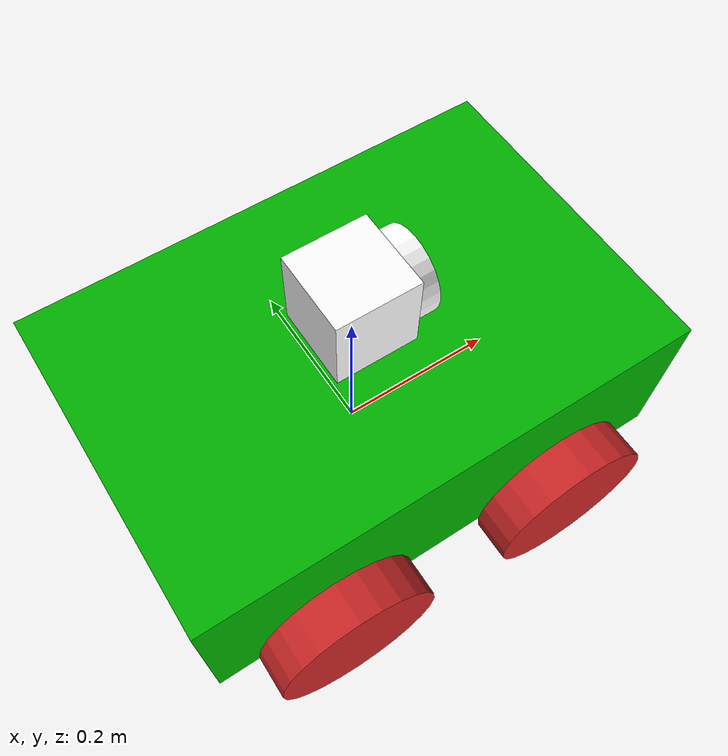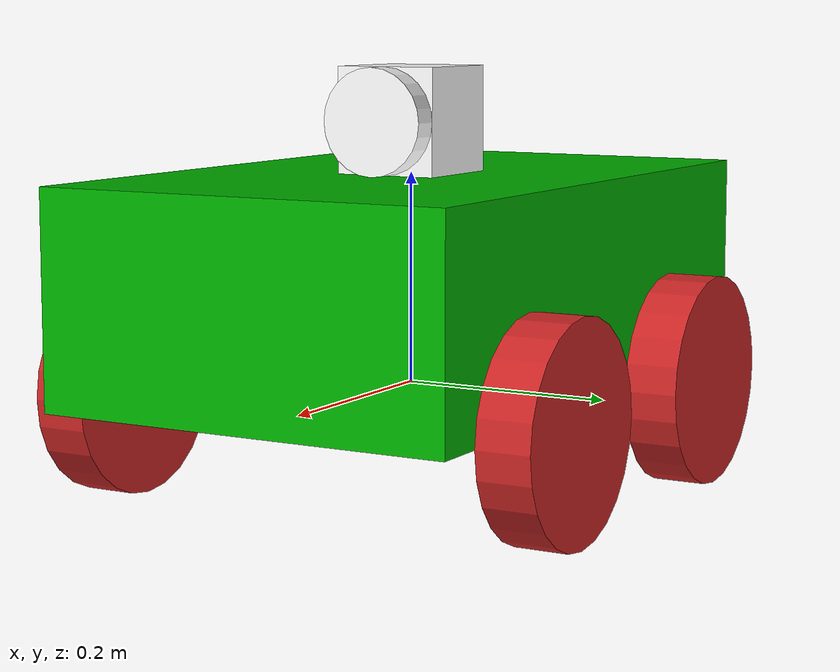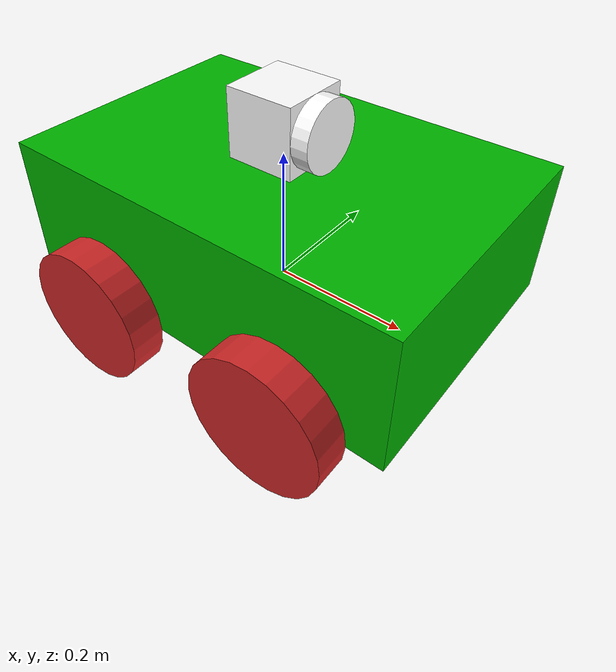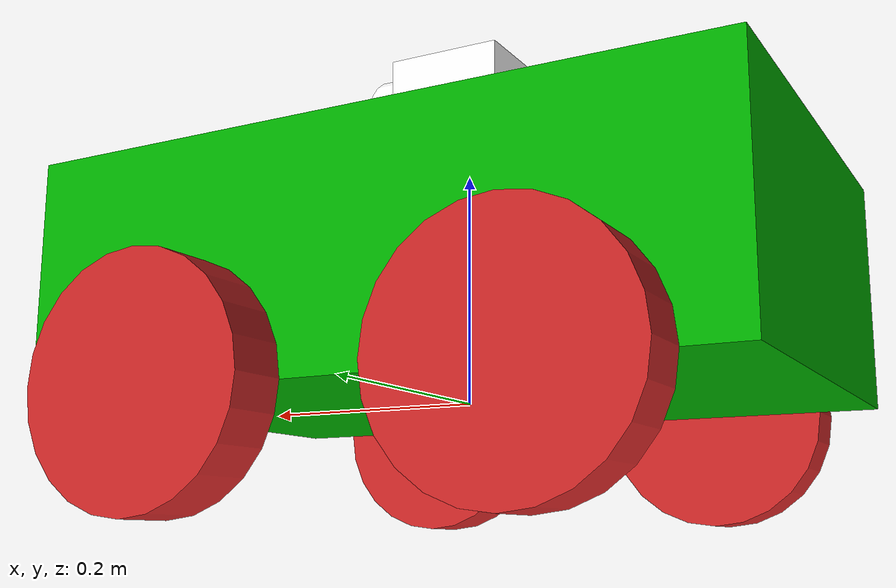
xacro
<?xml version ="1.0"?>
<robot name="my_robot">
    <material name="green">
        <color rgba ="0 0.7 0 1"/>
    </material>

    <material name="white">
        <color rgba ="1 1 1 1"/>
    </material>

    <link name="base_link">
        <visual>
            <geometry>
                <box size="0.6 0.4 0.2" />
            </geometry>
            <origin xyz = "0 0 0.1" rpy = "0 0 0" />
            <material name="green"/>
        </visual>
    </link>

    <link name="wheel_front_left">
        <visual>
            <geometry>
                <cylinder radius="0.1" length="0.05"/>
            </geometry>
            <origin xyz="0 0 0" rpy="1.57 0 0"/>
            <material name="red"/>
        </visual>
    </link>

    <link name="wheel_front_right">
        <visual>
            <geometry>
                <cylinder radius="0.1" length="0.05"/>
            </geometry>
            <origin xyz="0 0 0" rpy="1.57 0 0"/>
            <material name="red"/>
        </visual>
    </link>

    <link name="wheel_rear_left">
        <visual>
            <geometry>
                <cylinder radius="0.1" length="0.05"/>
            </geometry>
            <origin xyz="0 0 0" rpy="1.57 0 0"/>
            <material name="red"/>
        </visual>
    </link>

    <link name="wheel_rear_right">
        <visual>
            <geometry>
                <cylinder radius="0.1" length="0.05"/>
            </geometry>
            <origin xyz="0 0 0" rpy="1.57 0 0"/>
            <material name="red"/>
        </visual>
    </link>

    <link name="camera">
        <visual>
            <geometry>
                <box size = "0.1 0.1 0.1"/>
            </geometry>
            <origin xyz="0 0 0.25" rpy="0 0 0"/>
            <material name="white"/>
        </visual>
    </link>

    <link name="lense">
        <visual>
            <geometry>
                <cylinder radius="0.05" length="0.05"/>
            </geometry>
            <origin xyz="0.05 0 0.25" rpy="0 1.57 0"/>
            <material name="white"/>
        </visual>
    </link>

    <joint name="base_wheel_joint_front_left" type="continuous">
        <parent link="base_link"/>
        <child link="wheel_front_left"/>
        <origin xyz="-0.15 0.225 0" rpy="0 0 0"/>
        <axis xyz="0 1 0"/>
    </joint>

    <joint name="base_wheel_joint_front_right" type="continuous">
        <parent link="base_link"/>
        <child link="wheel_front_right"/>
        <origin xyz="-0.15 -0.225 0" rpy="0 0 0"/>
        <axis xyz="0 1 0"/>
    </joint>

    <joint name="base_wheel_joint_rear_left" type="continuous">
        <parent link="base_link"/>
        <child link="wheel_rear_left"/>
        <origin xyz="0.15 0.225 0" rpy="0 0 0"/>
        <axis xyz="0 1 0"/>
    </joint>

    <joint name="base_wheel_joint_rear_right" type="continuous">
        <parent link="base_link"/>
        <child link="wheel_rear_right"/>
        <origin xyz="0.15 -0.225 0" rpy="0 0 0"/>
        <axis xyz="0 1 0"/>
    </joint>

    <joint name="base_camera" type="fixed">
        <parent link="base_link"/>
        <child link="camera"/>
        <origin xyz="0 0 0" rpy="0 0 0"/>
        <axis xyz="0 1 0"/>
    </joint>

    <joint name="camera_lense" type="fixed">
        <parent link="camera"/>
        <child link="lense"/>
        <origin xyz="0 0 0" rpy="0 0 0"/>
        <axis xyz="0 1 0"/>
    </joint>

</robot>
